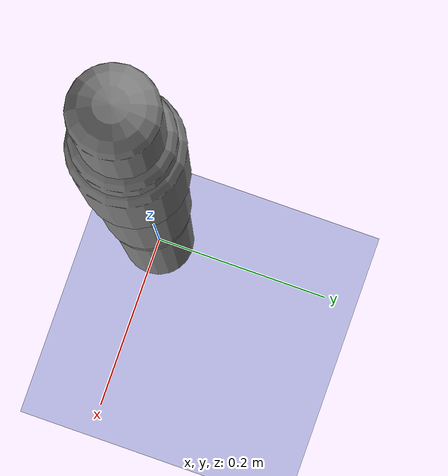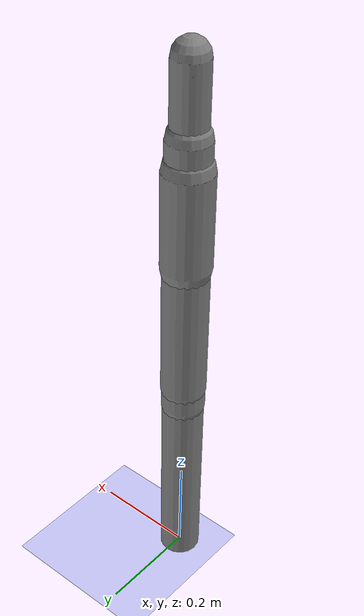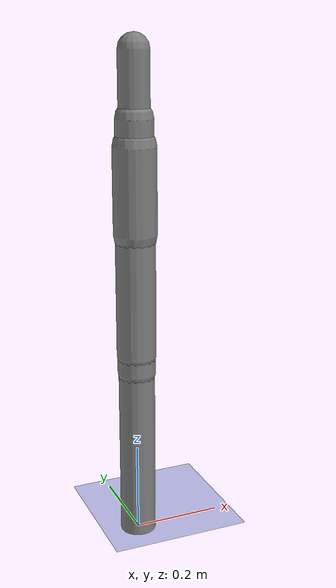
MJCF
<?xml version='1.0' encoding='UTF-8'?>
<mujoco model="robot_model">
  <worldbody>
    <light name="light" pos="0 -3 10" dir="0 0.5 -1" diffuse=".8 .8 .8" specular="0.1 0.1 0.1"/>
    <geom name="floor" type="plane" size="10.0 10.0 0.1" pos="0 0 0" rgba="0.8 0.8 1 1" contype="2" conaffinity="1"/>
    <body name="limb0" pos="0 0 0">
      <geom type="capsule" fromto="0 0 0 0 0 0.5591992442101426" size="0.04" density="1006.992780612291" contype="1" conaffinity="2"/>
      <site type="sphere" size="0.01" name="limb0_site0" pos="0 0 0.3226063180096684"/>
      <freejoint name="limb0_root"/>
      <body name="limb1" pos="0 0 0.3226063180096684">
        <geom type="capsule" fromto="0 0 0 0 0 0.16293838219924797" size="0.03294979075283615" density="768.4655649334691" contype="1" conaffinity="2"/>
        <site type="sphere" size="0.01" name="limb1_site0" pos="0 0 0.10165770993877273"/>
        <site type="sphere" size="0.01" name="limb1_site1" pos="0 0 0.06237900581419778"/>
        <site type="sphere" size="0.01" name="limb1_site2" pos="0 0 0.15652918234910357"/>
        <body name="limb2" pos="0 0 0.10165770993877273">
          <geom type="capsule" fromto="0 0 0 0 0 0.38231057733543733" size="0.04320126958942399" density="764.0354914470512" contype="1" conaffinity="2"/>
          <joint name="joint_limb1_limb2_0" type="hinge" axis="0 1 0" range="-66.9652511213398 66.9652511213398" damping="5.0"/>
        </body>
        <body name="limb3" pos="0 0 0.06237900581419778">
          <geom type="capsule" fromto="0 0 0 0 0 0.3449366956007403" size="0.04182995516077146" density="888.638751137447" contype="1" conaffinity="2"/>
          <site type="sphere" size="0.01" name="limb3_site0" pos="0 0 0.28276697946005874"/>
          <site type="sphere" size="0.01" name="limb3_site1" pos="0 0 0.22851488847648382"/>
          <body name="limb4" pos="0 0 0.28276697946005874">
            <geom type="capsule" fromto="0 0 0 0 0 0.38689637571819735" size="0.03296585503229504" density="787.6117064878987" contype="1" conaffinity="2"/>
            <joint name="joint_limb3_limb4_0" type="hinge" axis="0 1 0" range="-97.60316524447805 97.60316524447805" damping="5.0"/>
          </body>
          <body name="limb5" pos="0 0 0.22851488847648382">
            <geom type="capsule" fromto="0 0 0 0 0 0.46069774576177897" size="0.0332704348730845" density="1124.59993360464" contype="1" conaffinity="2"/>
            <joint name="joint_limb3_limb5_0" type="hinge" axis="0 1 0" range="-82.9398742241018 82.9398742241018" damping="5.0"/>
          </body>
          <joint name="joint_limb1_limb3_0" type="hinge" axis="1 0 0" range="-76.57739072162552 76.57739072162552" damping="5.0"/>
        </body>
        <body name="limb6" pos="0 0 0.15652918234910357">
          <geom type="capsule" fromto="0 0 0 0 0 0.45848124265706525" size="0.040699708724658924" density="1114.8531673935101" contype="1" conaffinity="2"/>
          <site type="sphere" size="0.01" name="limb6_site0" pos="0 0 0.21733219189986813"/>
          <site type="sphere" size="0.01" name="limb6_site1" pos="0 0 0.23481076478951235"/>
          <body name="limb7" pos="0 0 0.21733219189986813">
            <geom type="capsule" fromto="0 0 0 0 0 0.1846424278325025" size="0.046903008000628334" density="1077.8942432771871" contype="1" conaffinity="2"/>
            <joint name="joint_limb6_limb7_0" type="hinge" axis="0 1 0" range="-86.8112970984505 86.8112970984505" damping="5.0"/>
          </body>
          <body name="limb8" pos="0 0 0.23481076478951235">
            <geom type="capsule" fromto="0 0 0 0 0 0.10132629865508748" size="0.028272016099352537" density="685.6739189435759" contype="1" conaffinity="2"/>
            <joint name="joint_limb6_limb8_0" type="hinge" axis="1 0 0" range="-39.46093477322345 39.46093477322345" damping="5.0"/>
          </body>
          <joint name="joint_limb1_limb6_0" type="hinge" axis="0 1 0" range="-81.74728971790681 81.74728971790681" damping="5.0"/>
        </body>
        <joint name="joint_limb0_limb1_0" type="hinge" axis="0 1 0" range="-118.43465417951464 118.43465417951464" damping="5.0"/>
      </body>
    </body>
  </worldbody>
  <actuator>
    <position name="position_actuator_joint_limb0_limb1_0" joint="joint_limb0_limb1_0" gear="1.3172310151340172" inheritrange="1" kp="10.0"/>
    <position name="position_actuator_joint_limb1_limb2_0" joint="joint_limb1_limb2_0" gear="1.0628172104046523" inheritrange="1" kp="10.0"/>
    <position name="position_actuator_joint_limb1_limb3_0" joint="joint_limb1_limb3_0" gear="1.9786544527946286" inheritrange="1" kp="10.0"/>
    <position name="position_actuator_joint_limb3_limb4_0" joint="joint_limb3_limb4_0" gear="1.7459471619076385" inheritrange="1" kp="10.0"/>
    <position name="position_actuator_joint_limb3_limb5_0" joint="joint_limb3_limb5_0" gear="1.8192611440742856" inheritrange="1" kp="10.0"/>
    <position name="position_actuator_joint_limb1_limb6_0" joint="joint_limb1_limb6_0" gear="1.1401681469709617" inheritrange="1" kp="10.0"/>
    <position name="position_actuator_joint_limb6_limb7_0" joint="joint_limb6_limb7_0" gear="1.2162188671009793" inheritrange="1" kp="10.0"/>
    <position name="position_actuator_joint_limb6_limb8_0" joint="joint_limb6_limb8_0" gear="1.6699171564828723" inheritrange="1" kp="10.0"/>
  </actuator>
</mujoco>
